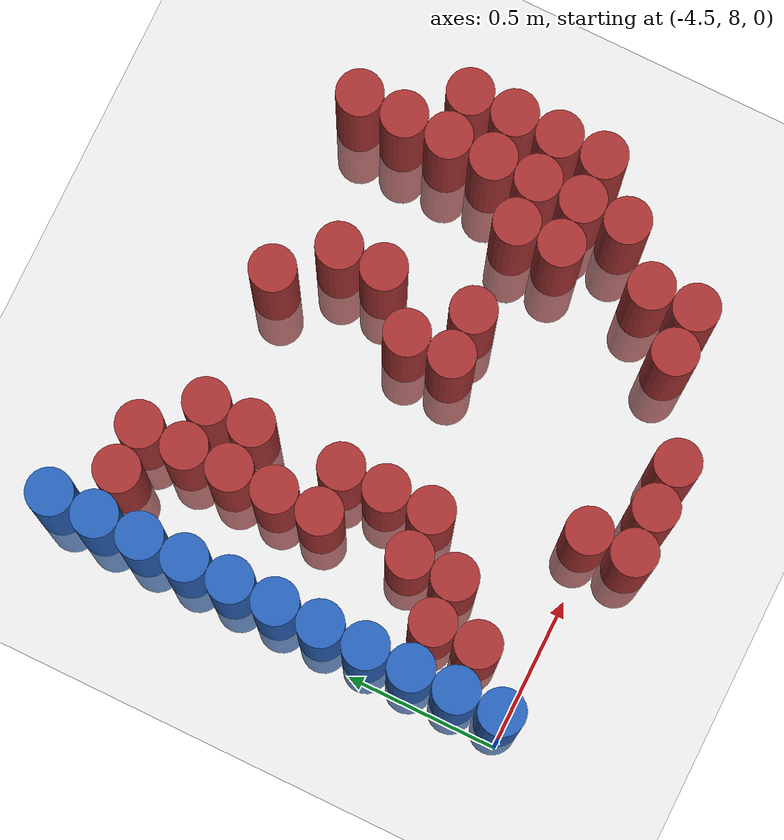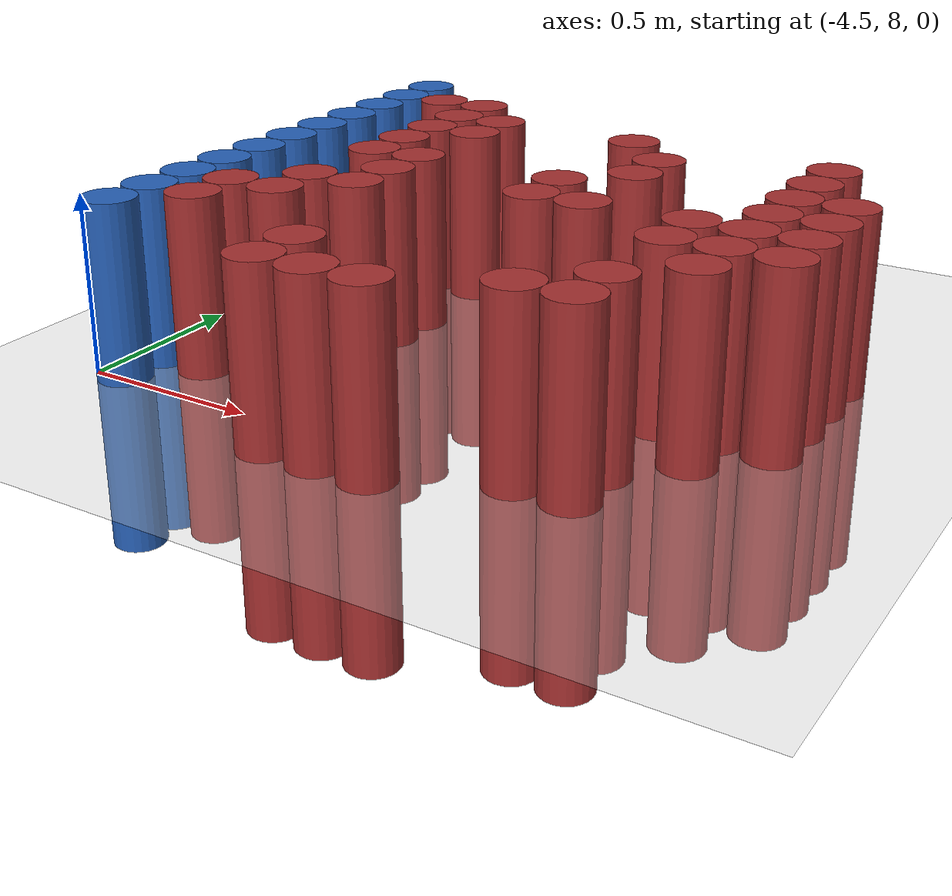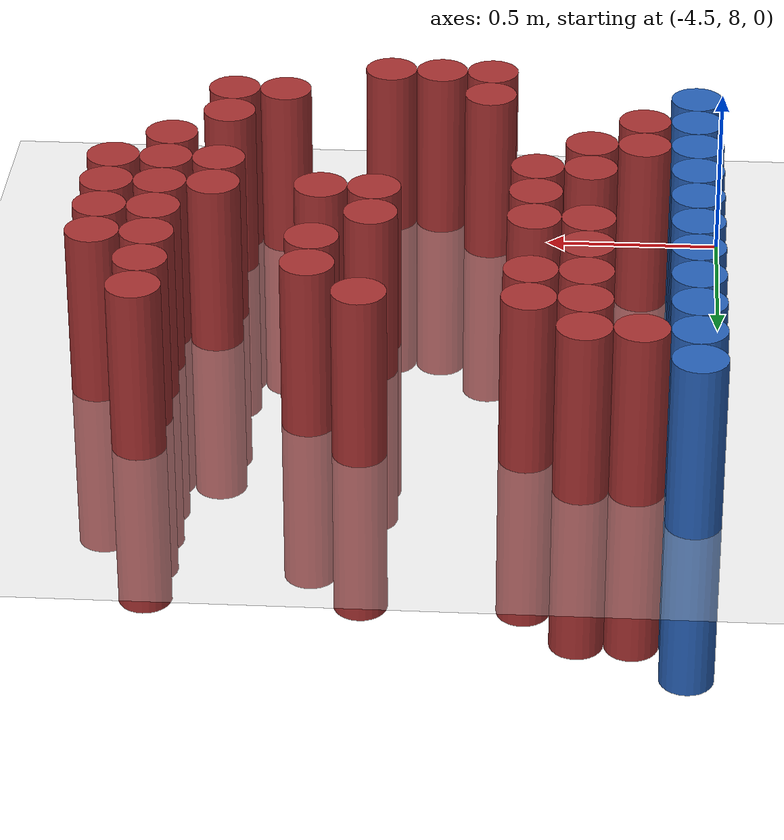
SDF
<sdf version="1.6">
 <world name="default">
  <model name="ground_plane">
   <static>1</static>
   <link name="link">
    <collision name="collision">
     <geometry><plane><normal>0 0 1</normal><size>100 100</size></plane></geometry>
     <surface><friction><ode><mu>100</mu><mu2>50</mu2></ode></friction></surface>
    </collision>
    <visual name="visual">
     <cast_shadows>0</cast_shadows>
     <geometry><plane><normal>0 0 1</normal><size>100 100</size></plane></geometry>
     <material>
      <script><uri>file://media/materials/scripts/gazebo.material</uri><name>Gazebo/Grey</name></script>
     </material>
    </visual>
   </link>
  </model>
  <model name="unit_cylinder_115">
   <static>1</static>
   <pose>-4.425000 8.025000 0.000000 0.000000 0.000000 0.000000</pose>
   <link name="link">
    <inertial>
     <mass>1</mass>
     <inertia><ixx>0.145833</ixx><ixy>0</ixy><ixz>0</ixz><iyy>0.145833</iyy><iyz>0</iyz><izz>0.125</izz></inertia>
    </inertial>
    <collision name="collision">
     <geometry><cylinder><radius>0.075000</radius><length>1</length></cylinder></geometry>
    </collision>
    <visual name="visual">
     <geometry><cylinder><radius>0.075000</radius><length>1</length></cylinder></geometry>
     <material>
      <ambient>0.152000 0.379000 0.720000 1</ambient>
      <diffuse>0.152000 0.379000 0.720000 1</diffuse>
     </material>
     <material>
      <script><name>Gazebo/Grey</name><uri>file://media/materials/scripts/gazebo.material</uri></script>
     </material>
    </visual>
   </link>
  </model>
  <model name="unit_cylinder_116">
   <static>1</static>
   <pose>-4.425000 8.175000 0.000000 0.000000 0.000000 0.000000</pose>
   <link name="link">
    <inertial>
     <mass>1</mass>
     <inertia><ixx>0.145833</ixx><ixy>0</ixy><ixz>0</ixz><iyy>0.145833</iyy><iyz>0</iyz><izz>0.125</izz></inertia>
    </inertial>
    <collision name="collision">
     <geometry><cylinder><radius>0.075000</radius><length>1</length></cylinder></geometry>
    </collision>
    <visual name="visual">
     <geometry><cylinder><radius>0.075000</radius><length>1</length></cylinder></geometry>
     <material>
      <ambient>0.152000 0.379000 0.720000 1</ambient>
      <diffuse>0.152000 0.379000 0.720000 1</diffuse>
     </material>
     <material>
      <script><name>Gazebo/Grey</name><uri>file://media/materials/scripts/gazebo.material</uri></script>
     </material>
    </visual>
   </link>
  </model>
  <model name="unit_cylinder_117">
   <static>1</static>
   <pose>-4.425000 8.325000 0.000000 0.000000 0.000000 0.000000</pose>
   <link name="link">
    <inertial>
     <mass>1</mass>
     <inertia><ixx>0.145833</ixx><ixy>0</ixy><ixz>0</ixz><iyy>0.145833</iyy><iyz>0</iyz><izz>0.125</izz></inertia>
    </inertial>
    <collision name="collision">
     <geometry><cylinder><radius>0.075000</radius><length>1</length></cylinder></geometry>
    </collision>
    <visual name="visual">
     <geometry><cylinder><radius>0.075000</radius><length>1</length></cylinder></geometry>
     <material>
      <ambient>0.152000 0.379000 0.720000 1</ambient>
      <diffuse>0.152000 0.379000 0.720000 1</diffuse>
     </material>
     <material>
      <script><name>Gazebo/Grey</name><uri>file://media/materials/scripts/gazebo.material</uri></script>
     </material>
    </visual>
   </link>
  </model>
  <model name="unit_cylinder_118">
   <static>1</static>
   <pose>-4.425000 8.475000 0.000000 0.000000 0.000000 0.000000</pose>
   <link name="link">
    <inertial>
     <mass>1</mass>
     <inertia><ixx>0.145833</ixx><ixy>0</ixy><ixz>0</ixz><iyy>0.145833</iyy><iyz>0</iyz><izz>0.125</izz></inertia>
    </inertial>
    <collision name="collision">
     <geometry><cylinder><radius>0.075000</radius><length>1</length></cylinder></geometry>
    </collision>
    <visual name="visual">
     <geometry><cylinder><radius>0.075000</radius><length>1</length></cylinder></geometry>
     <material>
      <ambient>0.152000 0.379000 0.720000 1</ambient>
      <diffuse>0.152000 0.379000 0.720000 1</diffuse>
     </material>
     <material>
      <script><name>Gazebo/Grey</name><uri>file://media/materials/scripts/gazebo.material</uri></script>
     </material>
    </visual>
   </link>
  </model>
  <model name="unit_cylinder_119">
   <static>1</static>
   <pose>-4.425000 8.625000 0.000000 0.000000 0.000000 0.000000</pose>
   <link name="link">
    <inertial>
     <mass>1</mass>
     <inertia><ixx>0.145833</ixx><ixy>0</ixy><ixz>0</ixz><iyy>0.145833</iyy><iyz>0</iyz><izz>0.125</izz></inertia>
    </inertial>
    <collision name="collision">
     <geometry><cylinder><radius>0.075000</radius><length>1</length></cylinder></geometry>
    </collision>
    <visual name="visual">
     <geometry><cylinder><radius>0.075000</radius><length>1</length></cylinder></geometry>
     <material>
      <ambient>0.152000 0.379000 0.720000 1</ambient>
      <diffuse>0.152000 0.379000 0.720000 1</diffuse>
     </material>
     <material>
      <script><name>Gazebo/Grey</name><uri>file://media/materials/scripts/gazebo.material</uri></script>
     </material>
    </visual>
   </link>
  </model>
  <model name="unit_cylinder_120">
   <static>1</static>
   <pose>-4.425000 8.775000 0.000000 0.000000 0.000000 0.000000</pose>
   <link name="link">
    <inertial>
     <mass>1</mass>
     <inertia><ixx>0.145833</ixx><ixy>0</ixy><ixz>0</ixz><iyy>0.145833</iyy><iyz>0</iyz><izz>0.125</izz></inertia>
    </inertial>
    <collision name="collision">
     <geometry><cylinder><radius>0.075000</radius><length>1</length></cylinder></geometry>
    </collision>
    <visual name="visual">
     <geometry><cylinder><radius>0.075000</radius><length>1</length></cylinder></geometry>
     <material>
      <ambient>0.152000 0.379000 0.720000 1</ambient>
      <diffuse>0.152000 0.379000 0.720000 1</diffuse>
     </material>
     <material>
      <script><name>Gazebo/Grey</name><uri>file://media/materials/scripts/gazebo.material</uri></script>
     </material>
    </visual>
   </link>
  </model>
  <model name="unit_cylinder_121">
   <static>1</static>
   <pose>-4.425000 8.925000 0.000000 0.000000 0.000000 0.000000</pose>
   <link name="link">
    <inertial>
     <mass>1</mass>
     <inertia><ixx>0.145833</ixx><ixy>0</ixy><ixz>0</ixz><iyy>0.145833</iyy><iyz>0</iyz><izz>0.125</izz></inertia>
    </inertial>
    <collision name="collision">
     <geometry><cylinder><radius>0.075000</radius><length>1</length></cylinder></geometry>
    </collision>
    <visual name="visual">
     <geometry><cylinder><radius>0.075000</radius><length>1</length></cylinder></geometry>
     <material>
      <ambient>0.152000 0.379000 0.720000 1</ambient>
      <diffuse>0.152000 0.379000 0.720000 1</diffuse>
     </material>
     <material>
      <script><name>Gazebo/Grey</name><uri>file://media/materials/scripts/gazebo.material</uri></script>
     </material>
    </visual>
   </link>
  </model>
  <model name="unit_cylinder_122">
   <static>1</static>
   <pose>-4.425000 9.075000 0.000000 0.000000 0.000000 0.000000</pose>
   <link name="link">
    <inertial>
     <mass>1</mass>
     <inertia><ixx>0.145833</ixx><ixy>0</ixy><ixz>0</ixz><iyy>0.145833</iyy><iyz>0</iyz><izz>0.125</izz></inertia>
    </inertial>
    <collision name="collision">
     <geometry><cylinder><radius>0.075000</radius><length>1</length></cylinder></geometry>
    </collision>
    <visual name="visual">
     <geometry><cylinder><radius>0.075000</radius><length>1</length></cylinder></geometry>
     <material>
      <ambient>0.152000 0.379000 0.720000 1</ambient>
      <diffuse>0.152000 0.379000 0.720000 1</diffuse>
     </material>
     <material>
      <script><name>Gazebo/Grey</name><uri>file://media/materials/scripts/gazebo.material</uri></script>
     </material>
    </visual>
   </link>
  </model>
  <model name="unit_cylinder_123">
   <static>1</static>
   <pose>-4.425000 9.225000 0.000000 0.000000 0.000000 0.000000</pose>
   <link name="link">
    <inertial>
     <mass>1</mass>
     <inertia><ixx>0.145833</ixx><ixy>0</ixy><ixz>0</ixz><iyy>0.145833</iyy><iyz>0</iyz><izz>0.125</izz></inertia>
    </inertial>
    <collision name="collision">
     <geometry><cylinder><radius>0.075000</radius><length>1</length></cylinder></geometry>
    </collision>
    <visual name="visual">
     <geometry><cylinder><radius>0.075000</radius><length>1</length></cylinder></geometry>
     <material>
      <ambient>0.152000 0.379000 0.720000 1</ambient>
      <diffuse>0.152000 0.379000 0.720000 1</diffuse>
     </material>
     <material>
      <script><name>Gazebo/Grey</name><uri>file://media/materials/scripts/gazebo.material</uri></script>
     </material>
    </visual>
   </link>
  </model>
  <model name="unit_cylinder_124">
   <static>1</static>
   <pose>-4.425000 9.375000 0.000000 0.000000 0.000000 0.000000</pose>
   <link name="link">
    <inertial>
     <mass>1</mass>
     <inertia><ixx>0.145833</ixx><ixy>0</ixy><ixz>0</ixz><iyy>0.145833</iyy><iyz>0</iyz><izz>0.125</izz></inertia>
    </inertial>
    <collision name="collision">
     <geometry><cylinder><radius>0.075000</radius><length>1</length></cylinder></geometry>
    </collision>
    <visual name="visual">
     <geometry><cylinder><radius>0.075000</radius><length>1</length></cylinder></geometry>
     <material>
      <ambient>0.152000 0.379000 0.720000 1</ambient>
      <diffuse>0.152000 0.379000 0.720000 1</diffuse>
     </material>
     <material>
      <script><name>Gazebo/Grey</name><uri>file://media/materials/scripts/gazebo.material</uri></script>
     </material>
    </visual>
   </link>
  </model>
  <model name="unit_cylinder_125">
   <static>1</static>
   <pose>-4.425000 9.525000 0.000000 0.000000 0.000000 0.000000</pose>
   <link name="link">
    <inertial>
     <mass>1</mass>
     <inertia><ixx>0.145833</ixx><ixy>0</ixy><ixz>0</ixz><iyy>0.145833</iyy><iyz>0</iyz><izz>0.125</izz></inertia>
    </inertial>
    <collision name="collision">
     <geometry><cylinder><radius>0.075000</radius><length>1</length></cylinder></geometry>
    </collision>
    <visual name="visual">
     <geometry><cylinder><radius>0.075000</radius><length>1</length></cylinder></geometry>
     <material>
      <ambient>0.152000 0.379000 0.720000 1</ambient>
      <diffuse>0.152000 0.379000 0.720000 1</diffuse>
     </material>
     <material>
      <script><name>Gazebo/Grey</name><uri>file://media/materials/scripts/gazebo.material</uri></script>
     </material>
    </visual>
   </link>
  </model>
  <model name="unit_cylinder_133">
   <static>1</static>
   <pose>-4.275000 8.175000 0.000000 0.000000 0.000000 0.000000</pose>
   <link name="link">
    <inertial>
     <mass>1</mass>
     <inertia><ixx>0.145833</ixx><ixy>0</ixy><ixz>0</ixz><iyy>0.145833</iyy><iyz>0</iyz><izz>0.125</izz></inertia>
    </inertial>
    <collision name="collision">
     <geometry><cylinder><radius>0.075000</radius><length>1</length></cylinder></geometry>
    </collision>
    <visual name="visual">
     <geometry><cylinder><radius>0.075000</radius><length>1</length></cylinder></geometry>
     <material>
      <ambient>0.648000 0.192000 0.192000 1</ambient>
      <diffuse>0.648000 0.192000 0.192000 1</diffuse>
     </material>
     <material>
      <script><name>Gazebo/Grey</name><uri>file://media/materials/scripts/gazebo.material</uri></script>
     </material>
    </visual>
   </link>
  </model>
  <model name="unit_cylinder_134">
   <static>1</static>
   <pose>-4.275000 8.325000 0.000000 0.000000 0.000000 0.000000</pose>
   <link name="link">
    <inertial>
     <mass>1</mass>
     <inertia><ixx>0.145833</ixx><ixy>0</ixy><ixz>0</ixz><iyy>0.145833</iyy><iyz>0</iyz><izz>0.125</izz></inertia>
    </inertial>
    <collision name="collision">
     <geometry><cylinder><radius>0.075000</radius><length>1</length></cylinder></geometry>
    </collision>
    <visual name="visual">
     <geometry><cylinder><radius>0.075000</radius><length>1</length></cylinder></geometry>
     <material>
      <ambient>0.648000 0.192000 0.192000 1</ambient>
      <diffuse>0.648000 0.192000 0.192000 1</diffuse>
     </material>
     <material>
      <script><name>Gazebo/Grey</name><uri>file://media/materials/scripts/gazebo.material</uri></script>
     </material>
    </visual>
   </link>
  </model>
  <model name="unit_cylinder_135">
   <static>1</static>
   <pose>-4.275000 9.375000 0.000000 0.000000 0.000000 0.000000</pose>
   <link name="link">
    <inertial>
     <mass>1</mass>
     <inertia><ixx>0.145833</ixx><ixy>0</ixy><ixz>0</ixz><iyy>0.145833</iyy><iyz>0</iyz><izz>0.125</izz></inertia>
    </inertial>
    <collision name="collision">
     <geometry><cylinder><radius>0.075000</radius><length>1</length></cylinder></geometry>
    </collision>
    <visual name="visual">
     <geometry><cylinder><radius>0.075000</radius><length>1</length></cylinder></geometry>
     <material>
      <ambient>0.648000 0.192000 0.192000 1</ambient>
      <diffuse>0.648000 0.192000 0.192000 1</diffuse>
     </material>
     <material>
      <script><name>Gazebo/Grey</name><uri>file://media/materials/scripts/gazebo.material</uri></script>
     </material>
    </visual>
   </link>
  </model>
  <model name="unit_cylinder_139">
   <static>1</static>
   <pose>-4.125000 8.325000 0.000000 0.000000 0.000000 0.000000</pose>
   <link name="link">
    <inertial>
     <mass>1</mass>
     <inertia><ixx>0.145833</ixx><ixy>0</ixy><ixz>0</ixz><iyy>0.145833</iyy><iyz>0</iyz><izz>0.125</izz></inertia>
    </inertial>
    <collision name="collision">
     <geometry><cylinder><radius>0.075000</radius><length>1</length></cylinder></geometry>
    </collision>
    <visual name="visual">
     <geometry><cylinder><radius>0.075000</radius><length>1</length></cylinder></geometry>
     <material>
      <ambient>0.648000 0.192000 0.192000 1</ambient>
      <diffuse>0.648000 0.192000 0.192000 1</diffuse>
     </material>
     <material>
      <script><name>Gazebo/Grey</name><uri>file://media/materials/scripts/gazebo.material</uri></script>
     </material>
    </visual>
   </link>
  </model>
  <model name="unit_cylinder_140">
   <static>1</static>
   <pose>-4.125000 8.475000 0.000000 0.000000 0.000000 0.000000</pose>
   <link name="link">
    <inertial>
     <mass>1</mass>
     <inertia><ixx>0.145833</ixx><ixy>0</ixy><ixz>0</ixz><iyy>0.145833</iyy><iyz>0</iyz><izz>0.125</izz></inertia>
    </inertial>
    <collision name="collision">
     <geometry><cylinder><radius>0.075000</radius><length>1</length></cylinder></geometry>
    </collision>
    <visual name="visual">
     <geometry><cylinder><radius>0.075000</radius><length>1</length></cylinder></geometry>
     <material>
      <ambient>0.648000 0.192000 0.192000 1</ambient>
      <diffuse>0.648000 0.192000 0.192000 1</diffuse>
     </material>
     <material>
      <script><name>Gazebo/Grey</name><uri>file://media/materials/scripts/gazebo.material</uri></script>
     </material>
    </visual>
   </link>
  </model>
  <model name="unit_cylinder_141">
   <static>1</static>
   <pose>-4.125000 8.775000 0.000000 0.000000 0.000000 0.000000</pose>
   <link name="link">
    <inertial>
     <mass>1</mass>
     <inertia><ixx>0.145833</ixx><ixy>0</ixy><ixz>0</ixz><iyy>0.145833</iyy><iyz>0</iyz><izz>0.125</izz></inertia>
    </inertial>
    <collision name="collision">
     <geometry><cylinder><radius>0.075000</radius><length>1</length></cylinder></geometry>
    </collision>
    <visual name="visual">
     <geometry><cylinder><radius>0.075000</radius><length>1</length></cylinder></geometry>
     <material>
      <ambient>0.648000 0.192000 0.192000 1</ambient>
      <diffuse>0.648000 0.192000 0.192000 1</diffuse>
     </material>
     <material>
      <script><name>Gazebo/Grey</name><uri>file://media/materials/scripts/gazebo.material</uri></script>
     </material>
    </visual>
   </link>
  </model>
  <model name="unit_cylinder_142">
   <static>1</static>
   <pose>-4.125000 8.925000 0.000000 0.000000 0.000000 0.000000</pose>
   <link name="link">
    <inertial>
     <mass>1</mass>
     <inertia><ixx>0.145833</ixx><ixy>0</ixy><ixz>0</ixz><iyy>0.145833</iyy><iyz>0</iyz><izz>0.125</izz></inertia>
    </inertial>
    <collision name="collision">
     <geometry><cylinder><radius>0.075000</radius><length>1</length></cylinder></geometry>
    </collision>
    <visual name="visual">
     <geometry><cylinder><radius>0.075000</radius><length>1</length></cylinder></geometry>
     <material>
      <ambient>0.648000 0.192000 0.192000 1</ambient>
      <diffuse>0.648000 0.192000 0.192000 1</diffuse>
     </material>
     <material>
      <script><name>Gazebo/Grey</name><uri>file://media/materials/scripts/gazebo.material</uri></script>
     </material>
    </visual>
   </link>
  </model>
  <model name="unit_cylinder_143">
   <static>1</static>
   <pose>-4.125000 9.075000 0.000000 0.000000 0.000000 0.000000</pose>
   <link name="link">
    <inertial>
     <mass>1</mass>
     <inertia><ixx>0.145833</ixx><ixy>0</ixy><ixz>0</ixz><iyy>0.145833</iyy><iyz>0</iyz><izz>0.125</izz></inertia>
    </inertial>
    <collision name="collision">
     <geometry><cylinder><radius>0.075000</radius><length>1</length></cylinder></geometry>
    </collision>
    <visual name="visual">
     <geometry><cylinder><radius>0.075000</radius><length>1</length></cylinder></geometry>
     <material>
      <ambient>0.648000 0.192000 0.192000 1</ambient>
      <diffuse>0.648000 0.192000 0.192000 1</diffuse>
     </material>
     <material>
      <script><name>Gazebo/Grey</name><uri>file://media/materials/scripts/gazebo.material</uri></script>
     </material>
    </visual>
   </link>
  </model>
  <model name="unit_cylinder_144">
   <static>1</static>
   <pose>-4.125000 9.225000 0.000000 0.000000 0.000000 0.000000</pose>
   <link name="link">
    <inertial>
     <mass>1</mass>
     <inertia><ixx>0.145833</ixx><ixy>0</ixy><ixz>0</ixz><iyy>0.145833</iyy><iyz>0</iyz><izz>0.125</izz></inertia>
    </inertial>
    <collision name="collision">
     <geometry><cylinder><radius>0.075000</radius><length>1</length></cylinder></geometry>
    </collision>
    <visual name="visual">
     <geometry><cylinder><radius>0.075000</radius><length>1</length></cylinder></geometry>
     <material>
      <ambient>0.648000 0.192000 0.192000 1</ambient>
      <diffuse>0.648000 0.192000 0.192000 1</diffuse>
     </material>
     <material>
      <script><name>Gazebo/Grey</name><uri>file://media/materials/scripts/gazebo.material</uri></script>
     </material>
    </visual>
   </link>
  </model>
  <model name="unit_cylinder_145">
   <static>1</static>
   <pose>-4.125000 9.375000 0.000000 0.000000 0.000000 0.000000</pose>
   <link name="link">
    <inertial>
     <mass>1</mass>
     <inertia><ixx>0.145833</ixx><ixy>0</ixy><ixz>0</ixz><iyy>0.145833</iyy><iyz>0</iyz><izz>0.125</izz></inertia>
    </inertial>
    <collision name="collision">
     <geometry><cylinder><radius>0.075000</radius><length>1</length></cylinder></geometry>
    </collision>
    <visual name="visual">
     <geometry><cylinder><radius>0.075000</radius><length>1</length></cylinder></geometry>
     <material>
      <ambient>0.648000 0.192000 0.192000 1</ambient>
      <diffuse>0.648000 0.192000 0.192000 1</diffuse>
     </material>
     <material>
      <script><name>Gazebo/Grey</name><uri>file://media/materials/scripts/gazebo.material</uri></script>
     </material>
    </visual>
   </link>
  </model>
  <model name="unit_cylinder_150">
   <static>1</static>
   <pose>-3.975000 8.475000 0.000000 0.000000 0.000000 0.000000</pose>
   <link name="link">
    <inertial>
     <mass>1</mass>
     <inertia><ixx>0.145833</ixx><ixy>0</ixy><ixz>0</ixz><iyy>0.145833</iyy><iyz>0</iyz><izz>0.125</izz></inertia>
    </inertial>
    <collision name="collision">
     <geometry><cylinder><radius>0.075000</radius><length>1</length></cylinder></geometry>
    </collision>
    <visual name="visual">
     <geometry><cylinder><radius>0.075000</radius><length>1</length></cylinder></geometry>
     <material>
      <ambient>0.648000 0.192000 0.192000 1</ambient>
      <diffuse>0.648000 0.192000 0.192000 1</diffuse>
     </material>
     <material>
      <script><name>Gazebo/Grey</name><uri>file://media/materials/scripts/gazebo.material</uri></script>
     </material>
    </visual>
   </link>
  </model>
  <model name="unit_cylinder_151">
   <static>1</static>
   <pose>-3.975000 8.625000 0.000000 0.000000 0.000000 0.000000</pose>
   <link name="link">
    <inertial>
     <mass>1</mass>
     <inertia><ixx>0.145833</ixx><ixy>0</ixy><ixz>0</ixz><iyy>0.145833</iyy><iyz>0</iyz><izz>0.125</izz></inertia>
    </inertial>
    <collision name="collision">
     <geometry><cylinder><radius>0.075000</radius><length>1</length></cylinder></geometry>
    </collision>
    <visual name="visual">
     <geometry><cylinder><radius>0.075000</radius><length>1</length></cylinder></geometry>
     <material>
      <ambient>0.648000 0.192000 0.192000 1</ambient>
      <diffuse>0.648000 0.192000 0.192000 1</diffuse>
     </material>
     <material>
      <script><name>Gazebo/Grey</name><uri>file://media/materials/scripts/gazebo.material</uri></script>
     </material>
    </visual>
   </link>
  </model>
  <model name="unit_cylinder_152">
   <static>1</static>
   <pose>-3.975000 8.775000 0.000000 0.000000 0.000000 0.000000</pose>
   <link name="link">
    <inertial>
     <mass>1</mass>
     <inertia><ixx>0.145833</ixx><ixy>0</ixy><ixz>0</ixz><iyy>0.145833</iyy><iyz>0</iyz><izz>0.125</izz></inertia>
    </inertial>
    <collision name="collision">
     <geometry><cylinder><radius>0.075000</radius><length>1</length></cylinder></geometry>
    </collision>
    <visual name="visual">
     <geometry><cylinder><radius>0.075000</radius><length>1</length></cylinder></geometry>
     <material>
      <ambient>0.648000 0.192000 0.192000 1</ambient>
      <diffuse>0.648000 0.192000 0.192000 1</diffuse>
     </material>
     <material>
      <script><name>Gazebo/Grey</name><uri>file://media/materials/scripts/gazebo.material</uri></script>
     </material>
    </visual>
   </link>
  </model>
  <model name="unit_cylinder_153">
   <static>1</static>
   <pose>-3.975000 9.075000 0.000000 0.000000 0.000000 0.000000</pose>
   <link name="link">
    <inertial>
     <mass>1</mass>
     <inertia><ixx>0.145833</ixx><ixy>0</ixy><ixz>0</ixz><iyy>0.145833</iyy><iyz>0</iyz><izz>0.125</izz></inertia>
    </inertial>
    <collision name="collision">
     <geometry><cylinder><radius>0.075000</radius><length>1</length></cylinder></geometry>
    </collision>
    <visual name="visual">
     <geometry><cylinder><radius>0.075000</radius><length>1</length></cylinder></geometry>
     <material>
      <ambient>0.648000 0.192000 0.192000 1</ambient>
      <diffuse>0.648000 0.192000 0.192000 1</diffuse>
     </material>
     <material>
      <script><name>Gazebo/Grey</name><uri>file://media/materials/scripts/gazebo.material</uri></script>
     </material>
    </visual>
   </link>
  </model>
  <model name="unit_cylinder_154">
   <static>1</static>
   <pose>-3.975000 9.225000 0.000000 0.000000 0.000000 0.000000</pose>
   <link name="link">
    <inertial>
     <mass>1</mass>
     <inertia><ixx>0.145833</ixx><ixy>0</ixy><ixz>0</ixz><iyy>0.145833</iyy><iyz>0</iyz><izz>0.125</izz></inertia>
    </inertial>
    <collision name="collision">
     <geometry><cylinder><radius>0.075000</radius><length>1</length></cylinder></geometry>
    </collision>
    <visual name="visual">
     <geometry><cylinder><radius>0.075000</radius><length>1</length></cylinder></geometry>
     <material>
      <ambient>0.648000 0.192000 0.192000 1</ambient>
      <diffuse>0.648000 0.192000 0.192000 1</diffuse>
     </material>
     <material>
      <script><name>Gazebo/Grey</name><uri>file://media/materials/scripts/gazebo.material</uri></script>
     </material>
    </visual>
   </link>
  </model>
  <model name="unit_cylinder_162">
   <static>1</static>
   <pose>-3.825000 7.875000 0.000000 0.000000 0.000000 0.000000</pose>
   <link name="link">
    <inertial>
     <mass>1</mass>
     <inertia><ixx>0.145833</ixx><ixy>0</ixy><ixz>0</ixz><iyy>0.145833</iyy><iyz>0</iyz><izz>0.125</izz></inertia>
    </inertial>
    <collision name="collision">
     <geometry><cylinder><radius>0.075000</radius><length>1</length></cylinder></geometry>
    </collision>
    <visual name="visual">
     <geometry><cylinder><radius>0.075000</radius><length>1</length></cylinder></geometry>
     <material>
      <ambient>0.648000 0.192000 0.192000 1</ambient>
      <diffuse>0.648000 0.192000 0.192000 1</diffuse>
     </material>
     <material>
      <script><name>Gazebo/Grey</name><uri>file://media/materials/scripts/gazebo.material</uri></script>
     </material>
    </visual>
   </link>
  </model>
  <model name="unit_cylinder_163">
   <static>1</static>
   <pose>-3.825000 8.025000 0.000000 0.000000 0.000000 0.000000</pose>
   <link name="link">
    <inertial>
     <mass>1</mass>
     <inertia><ixx>0.145833</ixx><ixy>0</ixy><ixz>0</ixz><iyy>0.145833</iyy><iyz>0</iyz><izz>0.125</izz></inertia>
    </inertial>
    <collision name="collision">
     <geometry><cylinder><radius>0.075000</radius><length>1</length></cylinder></geometry>
    </collision>
    <visual name="visual">
     <geometry><cylinder><radius>0.075000</radius><length>1</length></cylinder></geometry>
     <material>
      <ambient>0.648000 0.192000 0.192000 1</ambient>
      <diffuse>0.648000 0.192000 0.192000 1</diffuse>
     </material>
     <material>
      <script><name>Gazebo/Grey</name><uri>file://media/materials/scripts/gazebo.material</uri></script>
     </material>
    </visual>
   </link>
  </model>
  <model name="unit_cylinder_166">
   <static>1</static>
   <pose>-3.675000 7.875000 0.000000 0.000000 0.000000 0.000000</pose>
   <link name="link">
    <inertial>
     <mass>1</mass>
     <inertia><ixx>0.145833</ixx><ixy>0</ixy><ixz>0</ixz><iyy>0.145833</iyy><iyz>0</iyz><izz>0.125</izz></inertia>
    </inertial>
    <collision name="collision">
     <geometry><cylinder><radius>0.075000</radius><length>1</length></cylinder></geometry>
    </collision>
    <visual name="visual">
     <geometry><cylinder><radius>0.075000</radius><length>1</length></cylinder></geometry>
     <material>
      <ambient>0.648000 0.192000 0.192000 1</ambient>
      <diffuse>0.648000 0.192000 0.192000 1</diffuse>
     </material>
     <material>
      <script><name>Gazebo/Grey</name><uri>file://media/materials/scripts/gazebo.material</uri></script>
     </material>
    </visual>
   </link>
  </model>
  <model name="unit_cylinder_178">
   <static>1</static>
   <pose>-3.525000 7.875000 0.000000 0.000000 0.000000 0.000000</pose>
   <link name="link">
    <inertial>
     <mass>1</mass>
     <inertia><ixx>0.145833</ixx><ixy>0</ixy><ixz>0</ixz><iyy>0.145833</iyy><iyz>0</iyz><izz>0.125</izz></inertia>
    </inertial>
    <collision name="collision">
     <geometry><cylinder><radius>0.075000</radius><length>1</length></cylinder></geometry>
    </collision>
    <visual name="visual">
     <geometry><cylinder><radius>0.075000</radius><length>1</length></cylinder></geometry>
     <material>
      <ambient>0.648000 0.192000 0.192000 1</ambient>
      <diffuse>0.648000 0.192000 0.192000 1</diffuse>
     </material>
     <material>
      <script><name>Gazebo/Grey</name><uri>file://media/materials/scripts/gazebo.material</uri></script>
     </material>
    </visual>
   </link>
  </model>
  <model name="unit_cylinder_179">
   <static>1</static>
   <pose>-3.525000 8.625000 0.000000 0.000000 0.000000 0.000000</pose>
   <link name="link">
    <inertial>
     <mass>1</mass>
     <inertia><ixx>0.145833</ixx><ixy>0</ixy><ixz>0</ixz><iyy>0.145833</iyy><iyz>0</iyz><izz>0.125</izz></inertia>
    </inertial>
    <collision name="collision">
     <geometry><cylinder><radius>0.075000</radius><length>1</length></cylinder></geometry>
    </collision>
    <visual name="visual">
     <geometry><cylinder><radius>0.075000</radius><length>1</length></cylinder></geometry>
     <material>
      <ambient>0.648000 0.192000 0.192000 1</ambient>
      <diffuse>0.648000 0.192000 0.192000 1</diffuse>
     </material>
     <material>
      <script><name>Gazebo/Grey</name><uri>file://media/materials/scripts/gazebo.material</uri></script>
     </material>
    </visual>
   </link>
  </model>
  <model name="unit_cylinder_180">
   <static>1</static>
   <pose>-3.525000 8.775000 0.000000 0.000000 0.000000 0.000000</pose>
   <link name="link">
    <inertial>
     <mass>1</mass>
     <inertia><ixx>0.145833</ixx><ixy>0</ixy><ixz>0</ixz><iyy>0.145833</iyy><iyz>0</iyz><izz>0.125</izz></inertia>
    </inertial>
    <collision name="collision">
     <geometry><cylinder><radius>0.075000</radius><length>1</length></cylinder></geometry>
    </collision>
    <visual name="visual">
     <geometry><cylinder><radius>0.075000</radius><length>1</length></cylinder></geometry>
     <material>
      <ambient>0.648000 0.192000 0.192000 1</ambient>
      <diffuse>0.648000 0.192000 0.192000 1</diffuse>
     </material>
     <material>
      <script><name>Gazebo/Grey</name><uri>file://media/materials/scripts/gazebo.material</uri></script>
     </material>
    </visual>
   </link>
  </model>
  <model name="unit_cylinder_181">
   <static>1</static>
   <pose>-3.525000 9.225000 0.000000 0.000000 0.000000 0.000000</pose>
   <link name="link">
    <inertial>
     <mass>1</mass>
     <inertia><ixx>0.145833</ixx><ixy>0</ixy><ixz>0</ixz><iyy>0.145833</iyy><iyz>0</iyz><izz>0.125</izz></inertia>
    </inertial>
    <collision name="collision">
     <geometry><cylinder><radius>0.075000</radius><length>1</length></cylinder></geometry>
    </collision>
    <visual name="visual">
     <geometry><cylinder><radius>0.075000</radius><length>1</length></cylinder></geometry>
     <material>
      <ambient>0.648000 0.192000 0.192000 1</ambient>
      <diffuse>0.648000 0.192000 0.192000 1</diffuse>
     </material>
     <material>
      <script><name>Gazebo/Grey</name><uri>file://media/materials/scripts/gazebo.material</uri></script>
     </material>
    </visual>
   </link>
  </model>
  <model name="unit_cylinder_189">
   <static>1</static>
   <pose>-3.375000 8.625000 0.000000 0.000000 0.000000 0.000000</pose>
   <link name="link">
    <inertial>
     <mass>1</mass>
     <inertia><ixx>0.145833</ixx><ixy>0</ixy><ixz>0</ixz><iyy>0.145833</iyy><iyz>0</iyz><izz>0.125</izz></inertia>
    </inertial>
    <collision name="collision">
     <geometry><cylinder><radius>0.075000</radius><length>1</length></cylinder></geometry>
    </collision>
    <visual name="visual">
     <geometry><cylinder><radius>0.075000</radius><length>1</length></cylinder></geometry>
     <material>
      <ambient>0.648000 0.192000 0.192000 1</ambient>
      <diffuse>0.648000 0.192000 0.192000 1</diffuse>
     </material>
     <material>
      <script><name>Gazebo/Grey</name><uri>file://media/materials/scripts/gazebo.material</uri></script>
     </material>
    </visual>
   </link>
  </model>
  <model name="unit_cylinder_190">
   <static>1</static>
   <pose>-3.375000 8.925000 0.000000 0.000000 0.000000 0.000000</pose>
   <link name="link">
    <inertial>
     <mass>1</mass>
     <inertia><ixx>0.145833</ixx><ixy>0</ixy><ixz>0</ixz><iyy>0.145833</iyy><iyz>0</iyz><izz>0.125</izz></inertia>
    </inertial>
    <collision name="collision">
     <geometry><cylinder><radius>0.075000</radius><length>1</length></cylinder></geometry>
    </collision>
    <visual name="visual">
     <geometry><cylinder><radius>0.075000</radius><length>1</length></cylinder></geometry>
     <material>
      <ambient>0.648000 0.192000 0.192000 1</ambient>
      <diffuse>0.648000 0.192000 0.192000 1</diffuse>
     </material>
     <material>
      <script><name>Gazebo/Grey</name><uri>file://media/materials/scripts/gazebo.material</uri></script>
     </material>
    </visual>
   </link>
  </model>
  <model name="unit_cylinder_191">
   <static>1</static>
   <pose>-3.375000 9.075000 0.000000 0.000000 0.000000 0.000000</pose>
   <link name="link">
    <inertial>
     <mass>1</mass>
     <inertia><ixx>0.145833</ixx><ixy>0</ixy><ixz>0</ixz><iyy>0.145833</iyy><iyz>0</iyz><izz>0.125</izz></inertia>
    </inertial>
    <collision name="collision">
     <geometry><cylinder><radius>0.075000</radius><length>1</length></cylinder></geometry>
    </collision>
    <visual name="visual">
     <geometry><cylinder><radius>0.075000</radius><length>1</length></cylinder></geometry>
     <material>
      <ambient>0.648000 0.192000 0.192000 1</ambient>
      <diffuse>0.648000 0.192000 0.192000 1</diffuse>
     </material>
     <material>
      <script><name>Gazebo/Grey</name><uri>file://media/materials/scripts/gazebo.material</uri></script>
     </material>
    </visual>
   </link>
  </model>
  <model name="unit_cylinder_195">
   <static>1</static>
   <pose>-3.225000 8.025000 0.000000 0.000000 0.000000 0.000000</pose>
   <link name="link">
    <inertial>
     <mass>1</mass>
     <inertia><ixx>0.145833</ixx><ixy>0</ixy><ixz>0</ixz><iyy>0.145833</iyy><iyz>0</iyz><izz>0.125</izz></inertia>
    </inertial>
    <collision name="collision">
     <geometry><cylinder><radius>0.075000</radius><length>1</length></cylinder></geometry>
    </collision>
    <visual name="visual">
     <geometry><cylinder><radius>0.075000</radius><length>1</length></cylinder></geometry>
     <material>
      <ambient>0.648000 0.192000 0.192000 1</ambient>
      <diffuse>0.648000 0.192000 0.192000 1</diffuse>
     </material>
     <material>
      <script><name>Gazebo/Grey</name><uri>file://media/materials/scripts/gazebo.material</uri></script>
     </material>
    </visual>
   </link>
  </model>
  <model name="unit_cylinder_200">
   <static>1</static>
   <pose>-3.075000 8.025000 0.000000 0.000000 0.000000 0.000000</pose>
   <link name="link">
    <inertial>
     <mass>1</mass>
     <inertia><ixx>0.145833</ixx><ixy>0</ixy><ixz>0</ixz><iyy>0.145833</iyy><iyz>0</iyz><izz>0.125</izz></inertia>
    </inertial>
    <collision name="collision">
     <geometry><cylinder><radius>0.075000</radius><length>1</length></cylinder></geometry>
    </collision>
    <visual name="visual">
     <geometry><cylinder><radius>0.075000</radius><length>1</length></cylinder></geometry>
     <material>
      <ambient>0.648000 0.192000 0.192000 1</ambient>
      <diffuse>0.648000 0.192000 0.192000 1</diffuse>
     </material>
     <material>
      <script><name>Gazebo/Grey</name><uri>file://media/materials/scripts/gazebo.material</uri></script>
     </material>
    </visual>
   </link>
  </model>
  <model name="unit_cylinder_201">
   <static>1</static>
   <pose>-3.075000 8.175000 0.000000 0.000000 0.000000 0.000000</pose>
   <link name="link">
    <inertial>
     <mass>1</mass>
     <inertia><ixx>0.145833</ixx><ixy>0</ixy><ixz>0</ixz><iyy>0.145833</iyy><iyz>0</iyz><izz>0.125</izz></inertia>
    </inertial>
    <collision name="collision">
     <geometry><cylinder><radius>0.075000</radius><length>1</length></cylinder></geometry>
    </collision>
    <visual name="visual">
     <geometry><cylinder><radius>0.075000</radius><length>1</length></cylinder></geometry>
     <material>
      <ambient>0.648000 0.192000 0.192000 1</ambient>
      <diffuse>0.648000 0.192000 0.192000 1</diffuse>
     </material>
     <material>
      <script><name>Gazebo/Grey</name><uri>file://media/materials/scripts/gazebo.material</uri></script>
     </material>
    </visual>
   </link>
  </model>
  <model name="unit_cylinder_202">
   <static>1</static>
   <pose>-3.075000 8.475000 0.000000 0.000000 0.000000 0.000000</pose>
   <link name="link">
    <inertial>
     <mass>1</mass>
     <inertia><ixx>0.145833</ixx><ixy>0</ixy><ixz>0</ixz><iyy>0.145833</iyy><iyz>0</iyz><izz>0.125</izz></inertia>
    </inertial>
    <collision name="collision">
     <geometry><cylinder><radius>0.075000</radius><length>1</length></cylinder></geometry>
    </collision>
    <visual name="visual">
     <geometry><cylinder><radius>0.075000</radius><length>1</length></cylinder></geometry>
     <material>
      <ambient>0.648000 0.192000 0.192000 1</ambient>
      <diffuse>0.648000 0.192000 0.192000 1</diffuse>
     </material>
     <material>
      <script><name>Gazebo/Grey</name><uri>file://media/materials/scripts/gazebo.material</uri></script>
     </material>
    </visual>
   </link>
  </model>
  <model name="unit_cylinder_203">
   <static>1</static>
   <pose>-3.075000 8.625000 0.000000 0.000000 0.000000 0.000000</pose>
   <link name="link">
    <inertial>
     <mass>1</mass>
     <inertia><ixx>0.145833</ixx><ixy>0</ixy><ixz>0</ixz><iyy>0.145833</iyy><iyz>0</iyz><izz>0.125</izz></inertia>
    </inertial>
    <collision name="collision">
     <geometry><cylinder><radius>0.075000</radius><length>1</length></cylinder></geometry>
    </collision>
    <visual name="visual">
     <geometry><cylinder><radius>0.075000</radius><length>1</length></cylinder></geometry>
     <material>
      <ambient>0.648000 0.192000 0.192000 1</ambient>
      <diffuse>0.648000 0.192000 0.192000 1</diffuse>
     </material>
     <material>
      <script><name>Gazebo/Grey</name><uri>file://media/materials/scripts/gazebo.material</uri></script>
     </material>
    </visual>
   </link>
  </model>
  <model name="unit_cylinder_209">
   <static>1</static>
   <pose>-2.925000 8.325000 0.000000 0.000000 0.000000 0.000000</pose>
   <link name="link">
    <inertial>
     <mass>1</mass>
     <inertia><ixx>0.145833</ixx><ixy>0</ixy><ixz>0</ixz><iyy>0.145833</iyy><iyz>0</iyz><izz>0.125</izz></inertia>
    </inertial>
    <collision name="collision">
     <geometry><cylinder><radius>0.075000</radius><length>1</length></cylinder></geometry>
    </collision>
    <visual name="visual">
     <geometry><cylinder><radius>0.075000</radius><length>1</length></cylinder></geometry>
     <material>
      <ambient>0.648000 0.192000 0.192000 1</ambient>
      <diffuse>0.648000 0.192000 0.192000 1</diffuse>
     </material>
     <material>
      <script><name>Gazebo/Grey</name><uri>file://media/materials/scripts/gazebo.material</uri></script>
     </material>
    </visual>
   </link>
  </model>
  <model name="unit_cylinder_210">
   <static>1</static>
   <pose>-2.925000 8.475000 0.000000 0.000000 0.000000 0.000000</pose>
   <link name="link">
    <inertial>
     <mass>1</mass>
     <inertia><ixx>0.145833</ixx><ixy>0</ixy><ixz>0</ixz><iyy>0.145833</iyy><iyz>0</iyz><izz>0.125</izz></inertia>
    </inertial>
    <collision name="collision">
     <geometry><cylinder><radius>0.075000</radius><length>1</length></cylinder></geometry>
    </collision>
    <visual name="visual">
     <geometry><cylinder><radius>0.075000</radius><length>1</length></cylinder></geometry>
     <material>
      <ambient>0.648000 0.192000 0.192000 1</ambient>
      <diffuse>0.648000 0.192000 0.192000 1</diffuse>
     </material>
     <material>
      <script><name>Gazebo/Grey</name><uri>file://media/materials/scripts/gazebo.material</uri></script>
     </material>
    </visual>
   </link>
  </model>
  <model name="unit_cylinder_211">
   <static>1</static>
   <pose>-2.925000 8.625000 0.000000 0.000000 0.000000 0.000000</pose>
   <link name="link">
    <inertial>
     <mass>1</mass>
     <inertia><ixx>0.145833</ixx><ixy>0</ixy><ixz>0</ixz><iyy>0.145833</iyy><iyz>0</iyz><izz>0.125</izz></inertia>
    </inertial>
    <collision name="collision">
     <geometry><cylinder><radius>0.075000</radius><length>1</length></cylinder></geometry>
    </collision>
    <visual name="visual">
     <geometry><cylinder><radius>0.075000</radius><length>1</length></cylinder></geometry>
     <material>
      <ambient>0.648000 0.192000 0.192000 1</ambient>
      <diffuse>0.648000 0.192000 0.192000 1</diffuse>
     </material>
     <material>
      <script><name>Gazebo/Grey</name><uri>file://media/materials/scripts/gazebo.material</uri></script>
     </material>
    </visual>
   </link>
  </model>
  <model name="unit_cylinder_212">
   <static>1</static>
   <pose>-2.925000 8.775000 0.000000 0.000000 0.000000 0.000000</pose>
   <link name="link">
    <inertial>
     <mass>1</mass>
     <inertia><ixx>0.145833</ixx><ixy>0</ixy><ixz>0</ixz><iyy>0.145833</iyy><iyz>0</iyz><izz>0.125</izz></inertia>
    </inertial>
    <collision name="collision">
     <geometry><cylinder><radius>0.075000</radius><length>1</length></cylinder></geometry>
    </collision>
    <visual name="visual">
     <geometry><cylinder><radius>0.075000</radius><length>1</length></cylinder></geometry>
     <material>
      <ambient>0.648000 0.192000 0.192000 1</ambient>
      <diffuse>0.648000 0.192000 0.192000 1</diffuse>
     </material>
     <material>
      <script><name>Gazebo/Grey</name><uri>file://media/materials/scripts/gazebo.material</uri></script>
     </material>
    </visual>
   </link>
  </model>
  <model name="unit_cylinder_213">
   <static>1</static>
   <pose>-2.925000 8.925000 0.000000 0.000000 0.000000 0.000000</pose>
   <link name="link">
    <inertial>
     <mass>1</mass>
     <inertia><ixx>0.145833</ixx><ixy>0</ixy><ixz>0</ixz><iyy>0.145833</iyy><iyz>0</iyz><izz>0.125</izz></inertia>
    </inertial>
    <collision name="collision">
     <geometry><cylinder><radius>0.075000</radius><length>1</length></cylinder></geometry>
    </collision>
    <visual name="visual">
     <geometry><cylinder><radius>0.075000</radius><length>1</length></cylinder></geometry>
     <material>
      <ambient>0.648000 0.192000 0.192000 1</ambient>
      <diffuse>0.648000 0.192000 0.192000 1</diffuse>
     </material>
     <material>
      <script><name>Gazebo/Grey</name><uri>file://media/materials/scripts/gazebo.material</uri></script>
     </material>
    </visual>
   </link>
  </model>
  <model name="unit_cylinder_214">
   <static>1</static>
   <pose>-2.925000 9.075000 0.000000 0.000000 0.000000 0.000000</pose>
   <link name="link">
    <inertial>
     <mass>1</mass>
     <inertia><ixx>0.145833</ixx><ixy>0</ixy><ixz>0</ixz><iyy>0.145833</iyy><iyz>0</iyz><izz>0.125</izz></inertia>
    </inertial>
    <collision name="collision">
     <geometry><cylinder><radius>0.075000</radius><length>1</length></cylinder></geometry>
    </collision>
    <visual name="visual">
     <geometry><cylinder><radius>0.075000</radius><length>1</length></cylinder></geometry>
     <material>
      <ambient>0.648000 0.192000 0.192000 1</ambient>
      <diffuse>0.648000 0.192000 0.192000 1</diffuse>
     </material>
     <material>
      <script><name>Gazebo/Grey</name><uri>file://media/materials/scripts/gazebo.material</uri></script>
     </material>
    </visual>
   </link>
  </model>
  <model name="unit_cylinder_215">
   <static>1</static>
   <pose>-2.925000 9.225000 0.000000 0.000000 0.000000 0.000000</pose>
   <link name="link">
    <inertial>
     <mass>1</mass>
     <inertia><ixx>0.145833</ixx><ixy>0</ixy><ixz>0</ixz><iyy>0.145833</iyy><iyz>0</iyz><izz>0.125</izz></inertia>
    </inertial>
    <collision name="collision">
     <geometry><cylinder><radius>0.075000</radius><length>1</length></cylinder></geometry>
    </collision>
    <visual name="visual">
     <geometry><cylinder><radius>0.075000</radius><length>1</length></cylinder></geometry>
     <material>
      <ambient>0.648000 0.192000 0.192000 1</ambient>
      <diffuse>0.648000 0.192000 0.192000 1</diffuse>
     </material>
     <material>
      <script><name>Gazebo/Grey</name><uri>file://media/materials/scripts/gazebo.material</uri></script>
     </material>
    </visual>
   </link>
  </model>
  <model name="unit_cylinder_219">
   <static>1</static>
   <pose>-2.775000 8.475000 0.000000 0.000000 0.000000 0.000000</pose>
   <link name="link">
    <inertial>
     <mass>1</mass>
     <inertia><ixx>0.145833</ixx><ixy>0</ixy><ixz>0</ixz><iyy>0.145833</iyy><iyz>0</iyz><izz>0.125</izz></inertia>
    </inertial>
    <collision name="collision">
     <geometry><cylinder><radius>0.075000</radius><length>1</length></cylinder></geometry>
    </collision>
    <visual name="visual">
     <geometry><cylinder><radius>0.075000</radius><length>1</length></cylinder></geometry>
     <material>
      <ambient>0.648000 0.192000 0.192000 1</ambient>
      <diffuse>0.648000 0.192000 0.192000 1</diffuse>
     </material>
     <material>
      <script><name>Gazebo/Grey</name><uri>file://media/materials/scripts/gazebo.material</uri></script>
     </material>
    </visual>
   </link>
  </model>
  <model name="unit_cylinder_220">
   <static>1</static>
   <pose>-2.775000 8.625000 0.000000 0.000000 0.000000 0.000000</pose>
   <link name="link">
    <inertial>
     <mass>1</mass>
     <inertia><ixx>0.145833</ixx><ixy>0</ixy><ixz>0</ixz><iyy>0.145833</iyy><iyz>0</iyz><izz>0.125</izz></inertia>
    </inertial>
    <collision name="collision">
     <geometry><cylinder><radius>0.075000</radius><length>1</length></cylinder></geometry>
    </collision>
    <visual name="visual">
     <geometry><cylinder><radius>0.075000</radius><length>1</length></cylinder></geometry>
     <material>
      <ambient>0.648000 0.192000 0.192000 1</ambient>
      <diffuse>0.648000 0.192000 0.192000 1</diffuse>
     </material>
     <material>
      <script><name>Gazebo/Grey</name><uri>file://media/materials/scripts/gazebo.material</uri></script>
     </material>
    </visual>
   </link>
  </model>
  <model name="unit_cylinder_221">
   <static>1</static>
   <pose>-2.775000 8.775000 0.000000 0.000000 0.000000 0.000000</pose>
   <link name="link">
    <inertial>
     <mass>1</mass>
     <inertia><ixx>0.145833</ixx><ixy>0</ixy><ixz>0</ixz><iyy>0.145833</iyy><iyz>0</iyz><izz>0.125</izz></inertia>
    </inertial>
    <collision name="collision">
     <geometry><cylinder><radius>0.075000</radius><length>1</length></cylinder></geometry>
    </collision>
    <visual name="visual">
     <geometry><cylinder><radius>0.075000</radius><length>1</length></cylinder></geometry>
     <material>
      <ambient>0.648000 0.192000 0.192000 1</ambient>
      <diffuse>0.648000 0.192000 0.192000 1</diffuse>
     </material>
     <material>
      <script><name>Gazebo/Grey</name><uri>file://media/materials/scripts/gazebo.material</uri></script>
     </material>
    </visual>
   </link>
  </model>
  <model name="unit_cylinder_222">
   <static>1</static>
   <pose>-2.775000 8.925000 0.000000 0.000000 0.000000 0.000000</pose>
   <link name="link">
    <inertial>
     <mass>1</mass>
     <inertia><ixx>0.145833</ixx><ixy>0</ixy><ixz>0</ixz><iyy>0.145833</iyy><iyz>0</iyz><izz>0.125</izz></inertia>
    </inertial>
    <collision name="collision">
     <geometry><cylinder><radius>0.075000</radius><length>1</length></cylinder></geometry>
    </collision>
    <visual name="visual">
     <geometry><cylinder><radius>0.075000</radius><length>1</length></cylinder></geometry>
     <material>
      <ambient>0.648000 0.192000 0.192000 1</ambient>
      <diffuse>0.648000 0.192000 0.192000 1</diffuse>
     </material>
     <material>
      <script><name>Gazebo/Grey</name><uri>file://media/materials/scripts/gazebo.material</uri></script>
     </material>
    </visual>
   </link>
  </model>
 </world>
</sdf>
